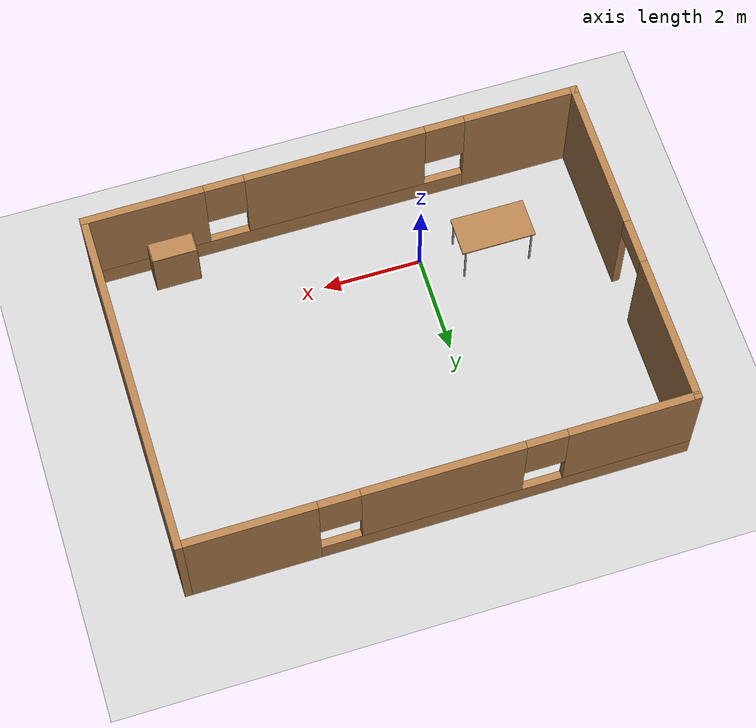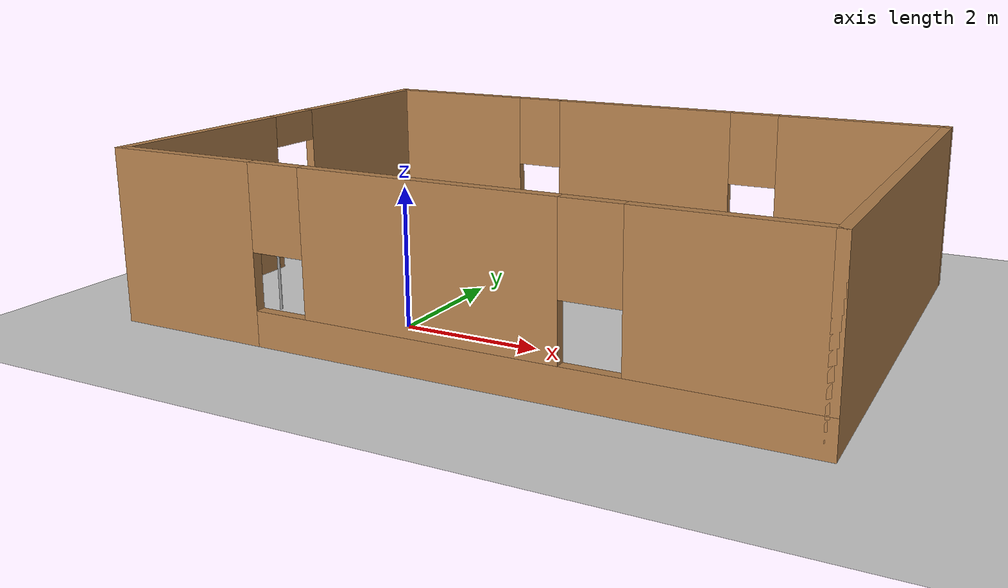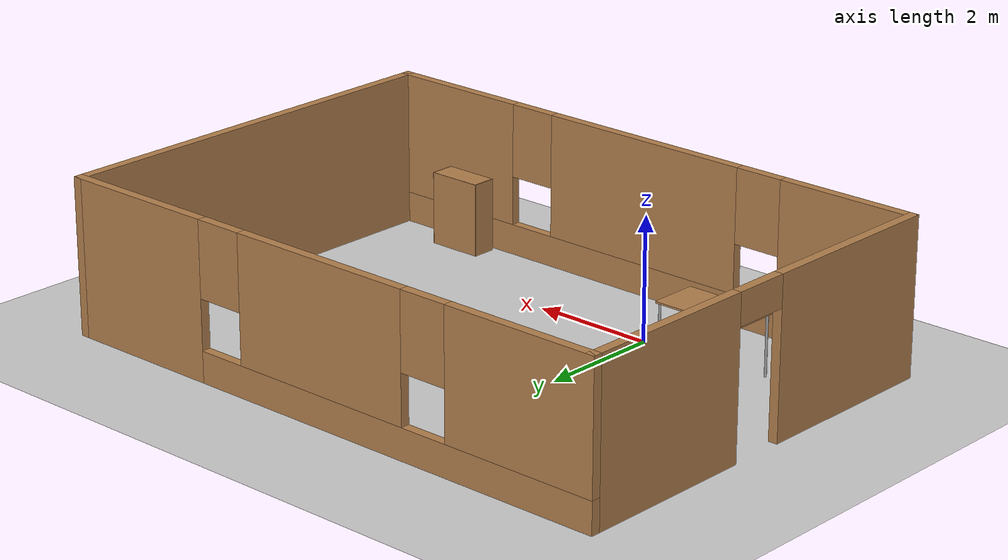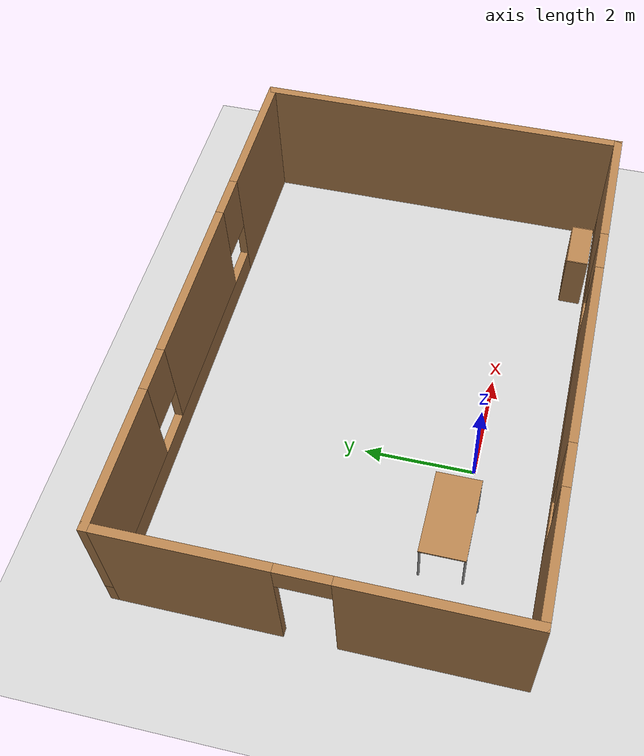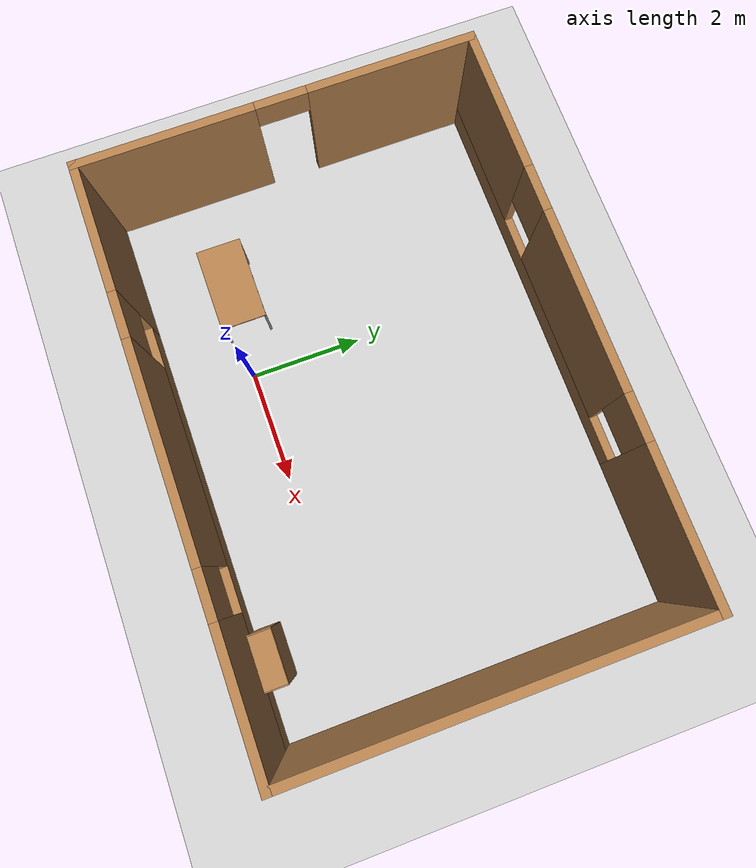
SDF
<sdf version="1.7">
 <world name="default">
  <light name="sun" type="directional">
   <pose>0 0 10 0 -0 0</pose>
   <diffuse>0.8 0.8 0.8 1</diffuse>
   <specular>0.2 0.2 0.2 1</specular>
   <attenuation>
    <range>1000</range>
    <constant>0.9</constant>
    <linear>0.01</linear>
    <quadratic>0.001</quadratic>
   </attenuation>
   <direction>-0.5 0.1 -0.9</direction>
   <spot><inner_angle>0</inner_angle><outer_angle>0</outer_angle><falloff>0</falloff></spot>
  </light>
  <gravity>0 0 -9.8</gravity>
  <magnetic_field>6e-06 2.3e-05 -4.2e-05</magnetic_field>
  <atmosphere type="adiabatic"/>
  <physics type="ode">
   <max_step_size>0.001</max_step_size>
   <real_time_factor>1</real_time_factor>
   <real_time_update_rate>1000</real_time_update_rate>
  </physics>
  <scene><ambient>0.4 0.4 0.4 1</ambient><background>0.7 0.7 0.7 1</background><shadows>1</shadows></scene>
  <audio><device>default</device></audio>
  <spherical_coordinates>
   <surface_model>EARTH_WGS84</surface_model>
   <latitude_deg>0</latitude_deg>
   <longitude_deg>0</longitude_deg>
   <elevation>0</elevation>
   <heading_deg>0</heading_deg>
  </spherical_coordinates>
  <model name="ground_plane">
   <static>1</static>
   <link name="link">
    <collision name="collision">
     <geometry><plane><normal>0 0 1</normal><size>100 100</size></plane></geometry>
     <surface>
      <contact><collide_bitmask>65535</collide_bitmask></contact>
      <friction><ode><mu>100</mu><mu2>50</mu2></ode></friction>
     </surface>
    </collision>
    <visual name="visual">
     <cast_shadows>0</cast_shadows>
     <geometry><plane><normal>0 0 1</normal><size>100 100</size></plane></geometry>
     <material>
      <script><uri>file://media/materials/scripts/gazebo.material</uri><name>Gazebo/Grey</name></script>
     </material>
    </visual>
   </link>
  </model>
  <model name="house">
   <pose>1.325 1.935 0 0 -0 0</pose>
   <link name="Wall_1">
    <pose>0 -3.425 0 0 -0 0</pose>
    <visual name="Wall_1_Visual_0">
     <pose>-3.83153 0 1.25 0 -0 0</pose>
     <geometry><box><size>2.33693 0.15 2.5</size></box></geometry>
     <material>
      <script><uri>file://media/materials/scripts/gazebo.material</uri><name>Gazebo/Wood</name></script>
      <ambient>1 1 1 1</ambient>
     </material>
     <meta><layer>0</layer></meta>
    </visual>
    <collision name="Wall_1_Collision_0">
     <geometry><box><size>2.33693 0.15 2.5</size></box></geometry>
     <pose>-3.83153 0 1.25 0 -0 0</pose>
    </collision>
    <visual name="Wall_1_Visual_1">
     <pose>1.16847 0 0.25 0 -0 0</pose>
     <geometry><box><size>7.66307 0.15 0.5</size></box></geometry>
     <material>
      <script><uri>file://media/materials/scripts/gazebo.material</uri><name>Gazebo/Wood</name></script>
      <ambient>1 1 1 1</ambient>
     </material>
     <meta><layer>0</layer></meta>
    </visual>
    <collision name="Wall_1_Collision_1">
     <geometry><box><size>7.66307 0.15 0.5</size></box></geometry>
     <pose>1.16847 0 0.25 0 -0 0</pose>
    </collision>
    <visual name="Wall_1_Visual_2">
     <pose>-0.045276 0 1.5 0 -0 0</pose>
     <geometry><box><size>3.63558 0.15 2</size></box></geometry>
     <material>
      <script><uri>file://media/materials/scripts/gazebo.material</uri><name>Gazebo/Wood</name></script>
      <ambient>1 1 1 1</ambient>
     </material>
     <meta><layer>0</layer></meta>
    </visual>
    <collision name="Wall_1_Collision_2">
     <geometry><box><size>3.63558 0.15 2</size></box></geometry>
     <pose>-0.045276 0 1.5 0 -0 0</pose>
    </collision>
    <visual name="Wall_1_Visual_3">
     <pose>3.78626 0 1.5 0 -0 0</pose>
     <geometry><box><size>2.42748 0.15 2</size></box></geometry>
     <material>
      <script><uri>file://media/materials/scripts/gazebo.material</uri><name>Gazebo/Wood</name></script>
      <ambient>1 1 1 1</ambient>
     </material>
     <meta><layer>0</layer></meta>
    </visual>
    <collision name="Wall_1_Collision_3">
     <geometry><box><size>2.42748 0.15 2</size></box></geometry>
     <pose>3.78626 0 1.5 0 -0 0</pose>
    </collision>
    <visual name="Wall_1_Visual_4">
     <pose>-2.26307 0 1.9 0 -0 0</pose>
     <geometry><box><size>0.8 0.15 1.2</size></box></geometry>
     <material>
      <script><uri>file://media/materials/scripts/gazebo.material</uri><name>Gazebo/Wood</name></script>
      <ambient>1 1 1 1</ambient>
     </material>
     <meta><layer>0</layer></meta>
    </visual>
    <collision name="Wall_1_Collision_4">
     <geometry><box><size>0.8 0.15 1.2</size></box></geometry>
     <pose>-2.26307 0 1.9 0 -0 0</pose>
    </collision>
    <visual name="Wall_1_Visual_5">
     <pose>2.17252 0 1.9 0 -0 0</pose>
     <geometry><box><size>0.8 0.15 1.2</size></box></geometry>
     <material>
      <script><uri>file://media/materials/scripts/gazebo.material</uri><name>Gazebo/Wood</name></script>
      <ambient>1 1 1 1</ambient>
     </material>
     <meta><layer>0</layer></meta>
    </visual>
    <collision name="Wall_1_Collision_5">
     <geometry><box><size>0.8 0.15 1.2</size></box></geometry>
     <pose>2.17252 0 1.9 0 -0 0</pose>
    </collision>
   </link>
   <link name="Wall_2">
    <collision name="Wall_2_Collision">
     <geometry><box><size>7 0.15 2.5</size></box></geometry>
     <pose>0 0 1.25 0 -0 0</pose>
    </collision>
    <visual name="Wall_2_Visual">
     <pose>0 0 1.25 0 -0 0</pose>
     <geometry><box><size>7 0.15 2.5</size></box></geometry>
     <material>
      <script><uri>file://media/materials/scripts/gazebo.material</uri><name>Gazebo/Wood</name></script>
      <ambient>1 1 1 1</ambient>
     </material>
     <meta><layer>0</layer></meta>
    </visual>
    <pose>4.925 0 0 0 -0 1.5708</pose>
   </link>
   <link name="Wall_3">
    <pose>0 3.425 0 0 -0 3.14159</pose>
    <visual name="Wall_3_Visual_0">
     <pose>-3.6639 0 1.25 0 -0 0</pose>
     <geometry><box><size>2.67221 0.15 2.5</size></box></geometry>
     <material>
      <script><uri>file://media/materials/scripts/gazebo.material</uri><name>Gazebo/Wood</name></script>
      <ambient>1 1 1 1</ambient>
     </material>
     <meta><layer>0</layer></meta>
    </visual>
    <collision name="Wall_3_Collision_0">
     <geometry><box><size>2.67221 0.15 2.5</size></box></geometry>
     <pose>-3.6639 0 1.25 0 -0 0</pose>
    </collision>
    <visual name="Wall_3_Visual_1">
     <pose>1.3361 0 0.25 0 -0 0</pose>
     <geometry><box><size>7.32779 0.15 0.5</size></box></geometry>
     <material>
      <script><uri>file://media/materials/scripts/gazebo.material</uri><name>Gazebo/Wood</name></script>
      <ambient>1 1 1 1</ambient>
     </material>
     <meta><layer>0</layer></meta>
    </visual>
    <collision name="Wall_3_Collision_1">
     <geometry><box><size>7.32779 0.15 0.5</size></box></geometry>
     <pose>1.3361 0 0.25 0 -0 0</pose>
    </collision>
    <visual name="Wall_3_Visual_2">
     <pose>0.045276 0 1.5 0 -0 0</pose>
     <geometry><box><size>3.14614 0.15 2</size></box></geometry>
     <material>
      <script><uri>file://media/materials/scripts/gazebo.material</uri><name>Gazebo/Wood</name></script>
      <ambient>1 1 1 1</ambient>
     </material>
     <meta><layer>0</layer></meta>
    </visual>
    <collision name="Wall_3_Collision_2">
     <geometry><box><size>3.14614 0.15 2</size></box></geometry>
     <pose>0.045276 0 1.5 0 -0 0</pose>
    </collision>
    <visual name="Wall_3_Visual_3">
     <pose>3.70917 0 1.5 0 -0 0</pose>
     <geometry><box><size>2.58166 0.15 2</size></box></geometry>
     <material>
      <script><uri>file://media/materials/scripts/gazebo.material</uri><name>Gazebo/Wood</name></script>
      <ambient>1 1 1 1</ambient>
     </material>
     <meta><layer>0</layer></meta>
    </visual>
    <collision name="Wall_3_Collision_3">
     <geometry><box><size>2.58166 0.15 2</size></box></geometry>
     <pose>3.70917 0 1.5 0 -0 0</pose>
    </collision>
    <visual name="Wall_3_Visual_4">
     <pose>-1.92779 0 1.9 0 -0 0</pose>
     <geometry><box><size>0.8 0.15 1.2</size></box></geometry>
     <material>
      <script><uri>file://media/materials/scripts/gazebo.material</uri><name>Gazebo/Wood</name></script>
      <ambient>1 1 1 1</ambient>
     </material>
     <meta><layer>0</layer></meta>
    </visual>
    <collision name="Wall_3_Collision_4">
     <geometry><box><size>0.8 0.15 1.2</size></box></geometry>
     <pose>-1.92779 0 1.9 0 -0 0</pose>
    </collision>
    <visual name="Wall_3_Visual_5">
     <pose>2.01835 0 1.9 0 -0 0</pose>
     <geometry><box><size>0.8 0.15 1.2</size></box></geometry>
     <material>
      <script><uri>file://media/materials/scripts/gazebo.material</uri><name>Gazebo/Wood</name></script>
      <ambient>1 1 1 1</ambient>
     </material>
     <meta><layer>0</layer></meta>
    </visual>
    <collision name="Wall_3_Collision_5">
     <geometry><box><size>0.8 0.15 1.2</size></box></geometry>
     <pose>2.01835 0 1.9 0 -0 0</pose>
    </collision>
   </link>
   <link name="Wall_4">
    <pose>-4.925 0 0 0 -0 -1.5708</pose>
    <visual name="Wall_4_Visual_0">
     <pose>-2.01557 0 1.25 0 -0 0</pose>
     <geometry><box><size>2.96887 0.15 2.5</size></box></geometry>
     <material>
      <script><uri>file://media/materials/scripts/gazebo.material</uri><name>Gazebo/Wood</name></script>
      <ambient>1 1 1 1</ambient>
     </material>
     <meta><layer>0</layer></meta>
    </visual>
    <collision name="Wall_4_Collision_0">
     <geometry><box><size>2.96887 0.15 2.5</size></box></geometry>
     <pose>-2.01557 0 1.25 0 -0 0</pose>
    </collision>
    <visual name="Wall_4_Visual_1">
     <pose>1.93443 0 1.25 0 -0 0</pose>
     <geometry><box><size>3.13113 0.15 2.5</size></box></geometry>
     <material>
      <script><uri>file://media/materials/scripts/gazebo.material</uri><name>Gazebo/Wood</name></script>
      <ambient>1 1 1 1</ambient>
     </material>
     <meta><layer>0</layer></meta>
    </visual>
    <collision name="Wall_4_Collision_1">
     <geometry><box><size>3.13113 0.15 2.5</size></box></geometry>
     <pose>1.93443 0 1.25 0 -0 0</pose>
    </collision>
    <visual name="Wall_4_Visual_2">
     <pose>-0.081133 0 2.25 0 -0 0</pose>
     <geometry><box><size>0.9 0.15 0.5</size></box></geometry>
     <material>
      <script><uri>file://media/materials/scripts/gazebo.material</uri><name>Gazebo/Wood</name></script>
      <ambient>1 1 1 1</ambient>
     </material>
     <meta><layer>0</layer></meta>
    </visual>
    <collision name="Wall_4_Collision_2">
     <geometry><box><size>0.9 0.15 0.5</size></box></geometry>
     <pose>-0.081133 0 2.25 0 -0 0</pose>
    </collision>
   </link>
   <static>1</static>
  </model>
  <model name="table">
   <static>1</static>
   <link name="link">
    <collision name="surface">
     <pose>0 0 1 0 -0 0</pose>
     <geometry><box><size>1.5 0.8 0.03</size></box></geometry>
     <surface><friction><ode><mu>0.6</mu><mu2>0.6</mu2></ode></friction></surface>
    </collision>
    <visual name="visual1">
     <pose>0 0 1 0 -0 0</pose>
     <geometry><box><size>1.5 0.8 0.03</size></box></geometry>
     <material>
      <script><uri>file://media/materials/scripts/gazebo.material</uri><name>Gazebo/Wood</name></script>
     </material>
    </visual>
    <collision name="front_left_leg">
     <pose>0.68 0.38 0.5 0 -0 0</pose>
     <geometry><cylinder><radius>0.02</radius><length>1</length></cylinder></geometry>
    </collision>
    <visual name="front_left_leg">
     <pose>0.68 0.38 0.5 0 -0 0</pose>
     <geometry><cylinder><radius>0.02</radius><length>1</length></cylinder></geometry>
     <material>
      <script><uri>file://media/materials/scripts/gazebo.material</uri><name>Gazebo/Grey</name></script>
     </material>
    </visual>
    <collision name="front_right_leg">
     <pose>0.68 -0.38 0.5 0 -0 0</pose>
     <geometry><cylinder><radius>0.02</radius><length>1</length></cylinder></geometry>
    </collision>
    <visual name="front_right_leg">
     <pose>0.68 -0.38 0.5 0 -0 0</pose>
     <geometry><cylinder><radius>0.02</radius><length>1</length></cylinder></geometry>
     <material>
      <script><uri>file://media/materials/scripts/gazebo.material</uri><name>Gazebo/Grey</name></script>
     </material>
    </visual>
    <collision name="back_right_leg">
     <pose>-0.68 -0.38 0.5 0 -0 0</pose>
     <geometry><cylinder><radius>0.02</radius><length>1</length></cylinder></geometry>
    </collision>
    <visual name="back_right_leg">
     <pose>-0.68 -0.38 0.5 0 -0 0</pose>
     <geometry><cylinder><radius>0.02</radius><length>1</length></cylinder></geometry>
     <material>
      <script><uri>file://media/materials/scripts/gazebo.material</uri><name>Gazebo/Grey</name></script>
     </material>
    </visual>
    <collision name="back_left_leg">
     <pose>-0.68 0.38 0.5 0 -0 0</pose>
     <geometry><cylinder><radius>0.02</radius><length>1</length></cylinder></geometry>
    </collision>
    <visual name="back_left_leg">
     <pose>-0.68 0.38 0.5 0 -0 0</pose>
     <geometry><cylinder><radius>0.02</radius><length>1</length></cylinder></geometry>
     <material>
      <script><uri>file://media/materials/scripts/gazebo.material</uri><name>Gazebo/Grey</name></script>
     </material>
    </visual>
   </link>
   <pose>-1.43656 0.190292 0 0 -0 0</pose>
  </model>
  <model name="bookshelf">
   <static>1</static>
   <link name="link">
    <inertial><mass>1</mass></inertial>
    <collision name="back">
     <pose>0 0.005 0.6 0 -0 0</pose>
     <geometry><box><size>0.9 0.01 1.2</size></box></geometry>
    </collision>
    <visual name="visual1">
     <pose>0 0.005 0.6 0 -0 0</pose>
     <geometry><box><size>0.9 0.01 1.2</size></box></geometry>
     <material>
      <script><uri>file://media/materials/scripts/gazebo.material</uri><name>Gazebo/Wood</name></script>
     </material>
    </visual>
    <collision name="left_side">
     <pose>0.45 -0.195 0.6 0 -0 0</pose>
     <geometry><box><size>0.02 0.4 1.2</size></box></geometry>
    </collision>
    <visual name="visual2">
     <pose>0.45 -0.195 0.6 0 -0 0</pose>
     <geometry><box><size>0.02 0.4 1.2</size></box></geometry>
     <material>
      <script><uri>file://media/materials/scripts/gazebo.material</uri><name>Gazebo/Wood</name></script>
     </material>
    </visual>
    <collision name="right_side">
     <pose>-0.45 -0.195 0.6 0 -0 0</pose>
     <geometry><box><size>0.02 0.4 1.2</size></box></geometry>
    </collision>
    <visual name="visual3">
     <pose>-0.45 -0.195 0.6 0 -0 0</pose>
     <geometry><box><size>0.02 0.4 1.2</size></box></geometry>
     <material>
      <script><uri>file://media/materials/scripts/gazebo.material</uri><name>Gazebo/Wood</name></script>
     </material>
    </visual>
    <collision name="bottom">
     <pose>0 -0.195 0.03 0 -0 0</pose>
     <geometry><box><size>0.88 0.4 0.06</size></box></geometry>
    </collision>
    <visual name="visual4">
     <pose>0 -0.195 0.03 0 -0 0</pose>
     <geometry><box><size>0.88 0.4 0.06</size></box></geometry>
     <material>
      <script><uri>file://media/materials/scripts/gazebo.material</uri><name>Gazebo/Wood</name></script>
     </material>
    </visual>
    <collision name="top">
     <pose>0 -0.195 1.19 0 -0 0</pose>
     <geometry><box><size>0.88 0.4 0.02</size></box></geometry>
    </collision>
    <visual name="visual5">
     <pose>0 -0.195 1.19 0 -0 0</pose>
     <geometry><box><size>0.88 0.4 0.02</size></box></geometry>
     <material>
      <script><uri>file://media/materials/scripts/gazebo.material</uri><name>Gazebo/Wood</name></script>
     </material>
    </visual>
    <collision name="low_shelf">
     <pose>0 -0.195 0.43 0 -0 0</pose>
     <geometry><box><size>0.88 0.4 0.02</size></box></geometry>
    </collision>
    <visual name="visual6">
     <pose>0 -0.195 0.43 0 -0 0</pose>
     <geometry><box><size>0.88 0.4 0.02</size></box></geometry>
     <material>
      <script><uri>file://media/materials/scripts/gazebo.material</uri><name>Gazebo/Wood</name></script>
     </material>
    </visual>
    <collision name="high_shelf">
     <pose>0 -0.195 0.8 0 -0 0</pose>
     <geometry><box><size>0.88 0.4 0.02</size></box></geometry>
    </collision>
    <visual name="visual7">
     <pose>0 -0.195 0.8 0 -0 0</pose>
     <geometry><box><size>0.88 0.4 0.02</size></box></geometry>
     <material>
      <script><uri>file://media/materials/scripts/gazebo.material</uri><name>Gazebo/Wood</name></script>
     </material>
    </visual>
   </link>
   <pose>4.71697 -0.946038 0 0 -0 0</pose>
  </model>
 </world>
</sdf>
